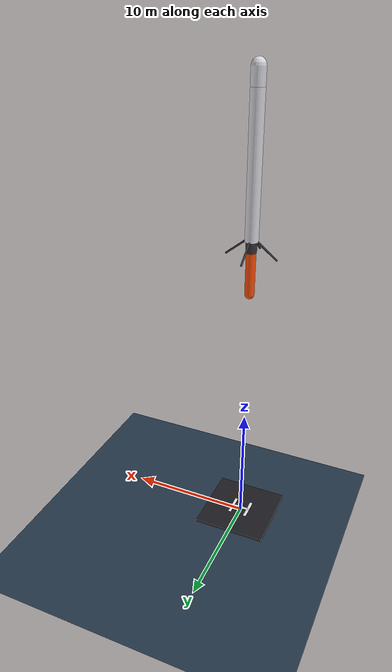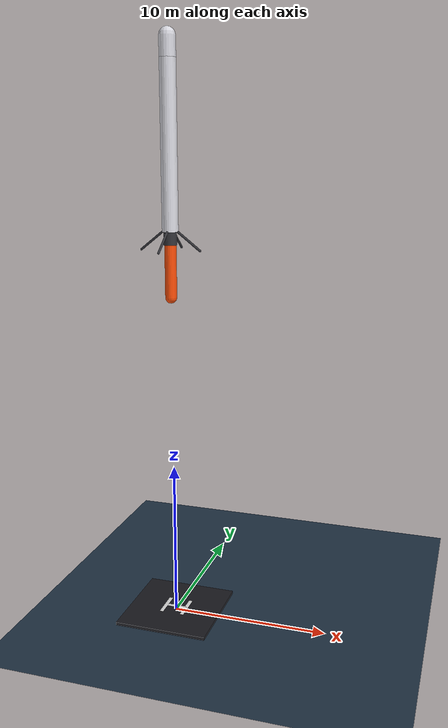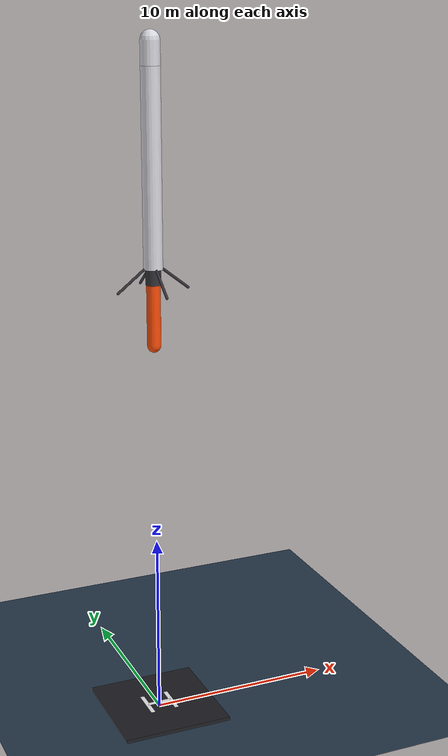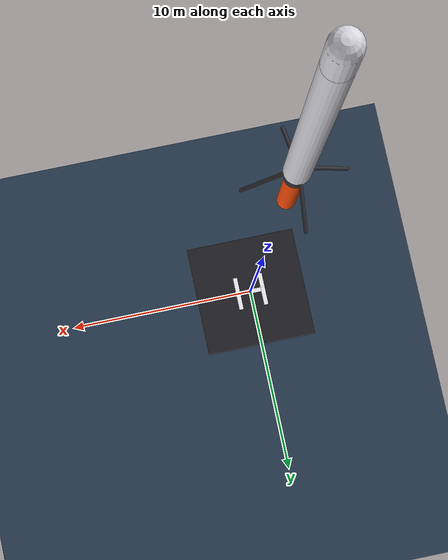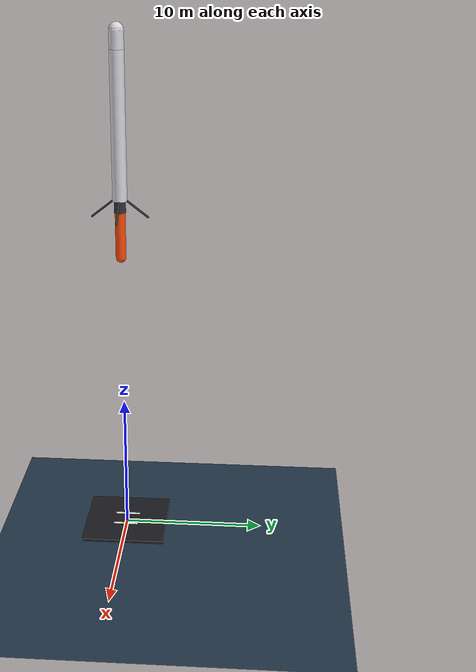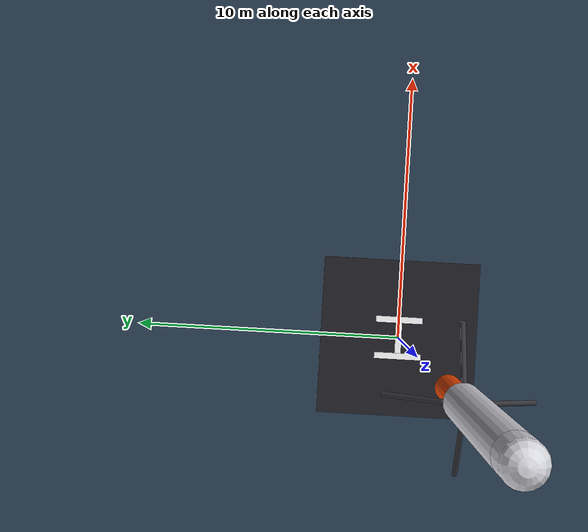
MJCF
<mujoco model="rocket_recovery">
  <compiler angle="degree" autolimits="true"/>
  <option timestep="0.002" gravity="0 0 -9.81" integrator="implicitfast"/>

  <visual>
    <headlight diffuse="0.6 0.6 0.6" ambient="0.3 0.3 0.3" specular="0 0 0"/>
    <rgba haze="0.15 0.25 0.35 1"/>
    <global azimuth="140" elevation="-20" offwidth="1280" offheight="1280"/>
  </visual>

  <asset>
    <texture type="skybox" builtin="gradient" rgb1="0.3 0.5 0.7" rgb2="0 0 0" width="512" height="512"/>
    <texture name="grid" type="2d" builtin="checker" rgb1="0.2 0.3 0.4" rgb2="0.1 0.15 0.2"
             width="512" height="512" mark="cross" markrgb="0.8 0.8 0.8"/>
    <material name="grid" texture="grid" texrepeat="20 20" reflectance="0.1"/>
    <material name="pad"   rgba="0.12 0.12 0.14 1" reflectance="0.2"/>
    <material name="mark"  rgba="0.95 0.95 0.95 1"/>
    <material name="body"  rgba="0.85 0.85 0.88 1" reflectance="0.3"/>
    <material name="dark"  rgba="0.2 0.2 0.22 1"/>
    <material name="flame" rgba="0.98 0.30 0.03 1" emission="0.35" specular="0" shininess="0"/>
    <material name="flamecore" rgba="1.0 0.62 0.12 1" emission="0.5" specular="0" shininess="0"/>
  </asset>

  <default>
    <joint armature="0.01" damping="2"/>
    <geom solref="0.01 1" solimp="0.95 0.99 0.001"/>
    <!-- collision groups: rocket geoms (type1/aff2) hit the world (type2/aff1)
         but never each other, so the gimbaled nozzle can't self-collide. -->
    <default class="rocket">
      <geom contype="1" conaffinity="2"/>
    </default>
    <default class="world">
      <geom contype="2" conaffinity="1"/>
    </default>
  </default>

  <worldbody>
    <light name="sun" pos="10 10 30" dir="-0.3 -0.3 -1" directional="true"/>
    <geom name="ground" type="plane" size="0 0 0.05" material="grid" condim="3" class="world"/>

    <!-- ===== Launch pad + H landing mark ===== -->
    <body name="pad" pos="0 0 0">
      <geom name="pad" type="box" size="3 3 0.1" pos="0 0 0.1" material="pad" class="world"/>
      <!-- "H" mark: two vertical bars + one cross bar, lying flat on the pad top -->
      <geom name="h_left"  type="box" size="0.12 0.9 0.012" pos="-0.7 0 0.205" material="mark" contype="0" conaffinity="0"/>
      <geom name="h_right" type="box" size="0.12 0.9 0.012" pos=" 0.7 0 0.205" material="mark" contype="0" conaffinity="0"/>
      <geom name="h_cross" type="box" size="0.7 0.12 0.012" pos="0 0 0.205" material="mark" contype="0" conaffinity="0"/>
      <!-- target site used by the controller as the touchdown reference -->
      <site name="h_marker" pos="0 0 0.21" size="0.08" rgba="1 0 0 0.0"/>
    </body>

    <!-- ===== Rocket ===== -->
    <body name="rocket" pos="0 0 30">
      <freejoint name="root"/>
      <inertial pos="0 0 0" mass="1000" diaginertia="9000 9000 130"/>
      <!-- IMU package mounted at the CoM (gyro + accelerometer) -->
      <site name="imu" pos="0 0 0" size="0.05" rgba="0 1 0 0"/>
      <!-- downward-facing landing camera (offset from the engine axis so the
           nozzle does not occlude the view); moves/tilts with the rocket -->
      <camera name="downcam" pos="0.7 0 -4.8" zaxis="0 0 1" fovy="90"/>
      <!-- main fuselage, long axis along local Z, total length 10 m -->
      <geom name="fuselage" type="cylinder" fromto="0 0 -5 0 0 5" size="0.5" material="body" mass="0" class="rocket"/>
      <geom name="nosecone" type="capsule"  fromto="0 0 5 0 0 6.2" size="0.5" material="body" mass="0" class="rocket"/>
      <!-- four landing legs: tips reach below the engine bell so they touch first -->
      <geom name="leg1" type="capsule" fromto="0.5 0 -5 1.9 0 -6.1" size="0.07" material="dark" mass="0" class="rocket"/>
      <geom name="leg2" type="capsule" fromto="-0.5 0 -5 -1.9 0 -6.1" size="0.07" material="dark" mass="0" class="rocket"/>
      <geom name="leg3" type="capsule" fromto="0 0.5 -5 0 1.9 -6.1" size="0.07" material="dark" mass="0" class="rocket"/>
      <geom name="leg4" type="capsule" fromto="0 -0.5 -5 0 -1.9 -6.1" size="0.07" material="dark" mass="0" class="rocket"/>

      <!-- ===== Two-axis gimbaled nozzle (thrust vectoring) ===== -->
      <body name="gimbal_x" pos="0 0 -5">
        <joint name="gimbal_x" type="hinge" axis="1 0 0" range="-12 12"/>
        <inertial pos="0 0 -0.2" mass="5" diaginertia="0.5 0.5 0.5"/>
        <body name="gimbal_y" pos="0 0 0">
          <joint name="gimbal_y" type="hinge" axis="0 1 0" range="-12 12"/>
          <geom name="nozzle" type="cylinder" fromto="0 0 0 0 0 -0.8" size="0.4" material="dark" mass="50" class="rocket"/>
          <site name="thrust" pos="0 0 0" zaxis="0 0 1" size="0.05"/>
          <geom name="flame_outer" type="capsule" fromto="0 0 -0.8 0 0 -4.0" size="0.36"
                material="flame" mass="0" contype="0" conaffinity="0"/>
          <geom name="flame_core" type="capsule" fromto="0 0 -0.8 0 0 -3.0" size="0.17"
                material="flamecore" mass="0" contype="0" conaffinity="0"/>
        </body>
      </body>
    </body>
  </worldbody>

  <actuator>
    <!-- gimbal servos: position-controlled deflection angles (radians via ctrl, deg model) -->
    <position name="gimbal_x" joint="gimbal_x" kp="8000" kv="400" ctrlrange="-0.21 0.21"/>
    <position name="gimbal_y" joint="gimbal_y" kp="8000" kv="400" ctrlrange="-0.21 0.21"/>
    <!-- main engine thrust along the nozzle +Z axis (Newtons) -->
    <motor name="thrust" site="thrust" gear="0 0 1 0 0 0" ctrlrange="0 22000"/>
  </actuator>

  <sensor>
    <!-- ground-truth frame sensors (used for scoring and to synthesize the
         noisy IMU/GPS measurements that the estimator actually consumes) -->
    <framepos     name="rocket_pos"  objtype="body" objname="rocket"/>
    <framequat    name="rocket_quat" objtype="body" objname="rocket"/>
    <framelinvel  name="rocket_vel"  objtype="body" objname="rocket"/>
    <frameangvel  name="rocket_avel" objtype="body" objname="rocket"/>
    <framepos     name="marker_pos"  objtype="site" objname="h_marker"/>
    <!-- onboard IMU: body-frame angular rate and specific force -->
    <gyro          name="imu_gyro"  site="imu"/>
    <accelerometer name="imu_accel" site="imu"/>
    <!-- telemetry readouts shown live in the viewer's Sensor panel; values are
         written each frame by env.set_telemetry() (see rocket_landing/env.py) -->
    <user name="roll_deg"     dim="1" needstage="vel"/>
    <user name="pitch_deg"    dim="1" needstage="vel"/>
    <user name="yaw_deg"      dim="1" needstage="vel"/>
    <user name="thrust_kN"    dim="1" needstage="vel"/>
    <user name="throttle_pct" dim="1" needstage="vel"/>
    <user name="gimbal_x_deg" dim="1" needstage="vel"/>
    <user name="gimbal_y_deg" dim="1" needstage="vel"/>
    <user name="altitude_m"   dim="1" needstage="vel"/>
    <user name="speed_mps"    dim="1" needstage="vel"/>
    <user name="vspeed_mps"   dim="1" needstage="vel"/>
  </sensor>
</mujoco>
